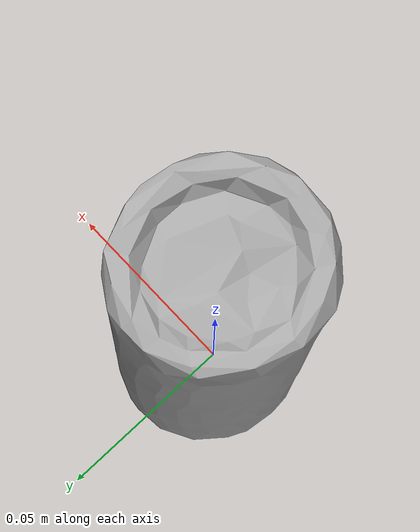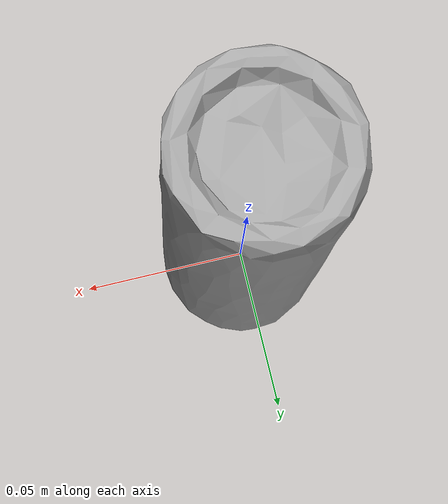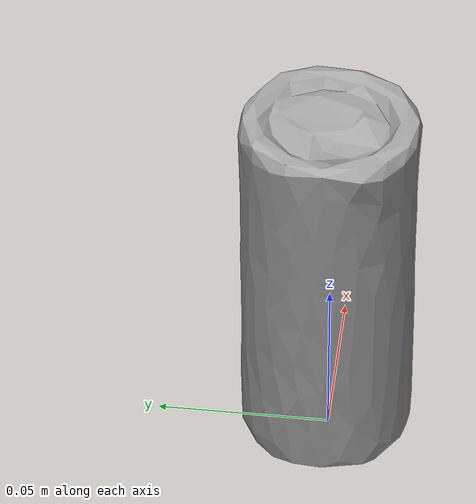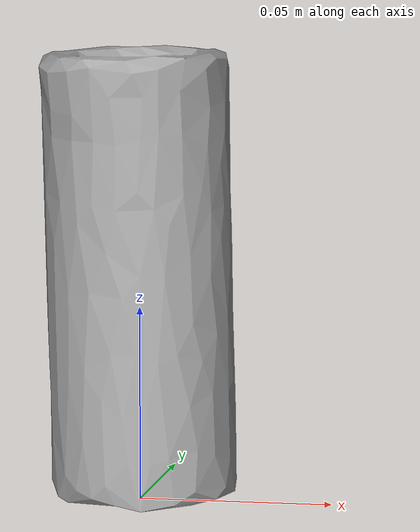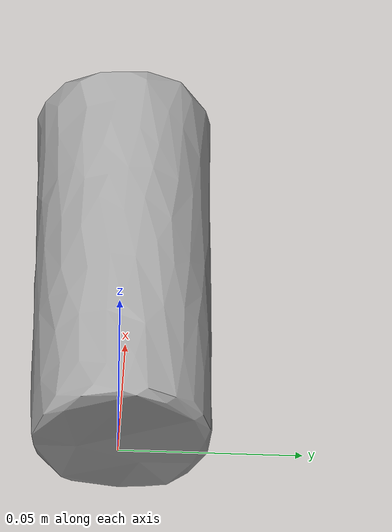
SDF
<?xml version="1.0" ?>
<sdf version="1.5">
  <model name="salt_cellar">
    <link name="salt_cellar">
      <inertial>
        <mass>0.390</mass>
        <inertia>
          <ixx>0.00058</ixx>
          <ixy>0</ixy>
          <ixz>0</ixz>
          <iyy>0.00058</iyy>
          <iyz>0</iyz>
          <izz>0.00019</izz>
        </inertia>
      </inertial>
      <collision name="salt_cellar_collision">
        <geometry>
          <mesh>
            <uri>model://salt_cellar/meshes/salt_cellar.dae</uri>
          </mesh>
        </geometry>
        <surface>
          <friction>
            <ode>
              <mu>1.0</mu>
              <mu2>1.0</mu2>
            </ode>
          </friction>
          <contact>
            <ode>
              <kp>10000000.0</kp>
              <kd>1.0</kd>
              <min_depth>0.001</min_depth>
              <max_vel>0.1</max_vel>
            </ode>
          </contact>
        </surface>
      </collision>
      <visual name="salt_cellar_visual">
        <geometry>
          <mesh>
            <uri>model://salt_cellar/meshes/salt_cellar.dae</uri>
          </mesh>
        </geometry>
      </visual>
    </link>
  </model>
</sdf>
